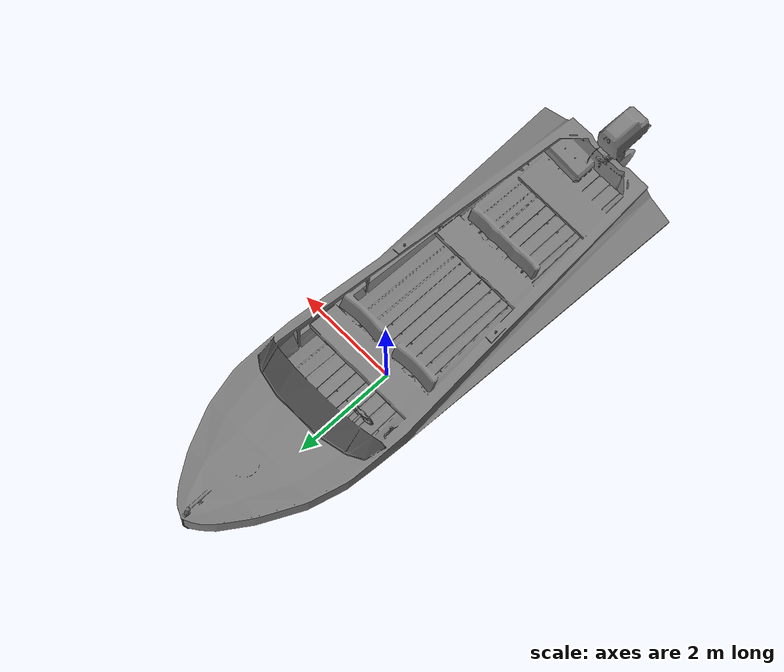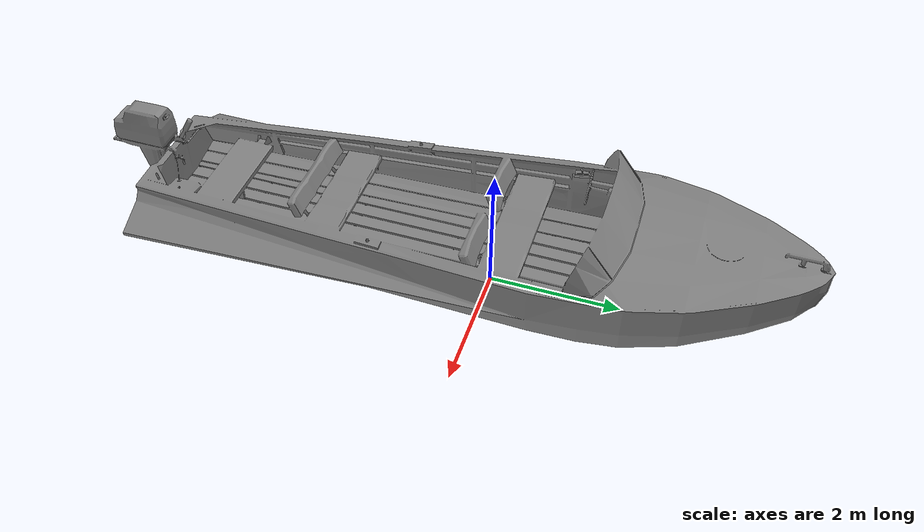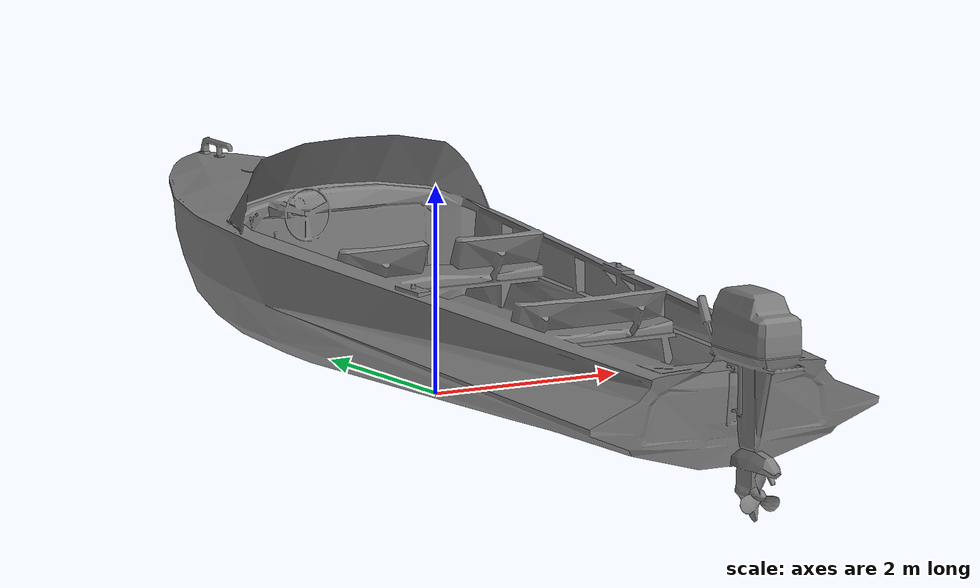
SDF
<?xml version='1.0'?>
<sdf version='1.7'>
  <model name='speedboat'>
    <static>true</static>
    <link name='link'>
      <visual name='visual'>
        <pose>0 0 0.2 0 0 1.57</pose>
        <geometry>
          <mesh>
            <uri>model://speedboat/meshes/Speedboat.stl</uri>
            <scale>2.0 2.0 2.0</scale>
          </mesh>
        </geometry>
        <material>
          <ambient>0.5 0.5 0.5 1</ambient>
          <diffuse>0.5 0.5 0.5 1</diffuse>
          <specular>0.2 0.2 0.2 1</specular>
        </material>
      </visual>
      <collision name='collision'>
        <pose>0 0 0.2 0 0 1.57</pose>
        <geometry>
          <mesh>
            <uri>model://speedboat/meshes/Speedboat.stl</uri>
            <scale>2.0 2.0 2.0</scale>
          </mesh>
        </geometry>
      </collision>
    </link>
  </model>
</sdf>
